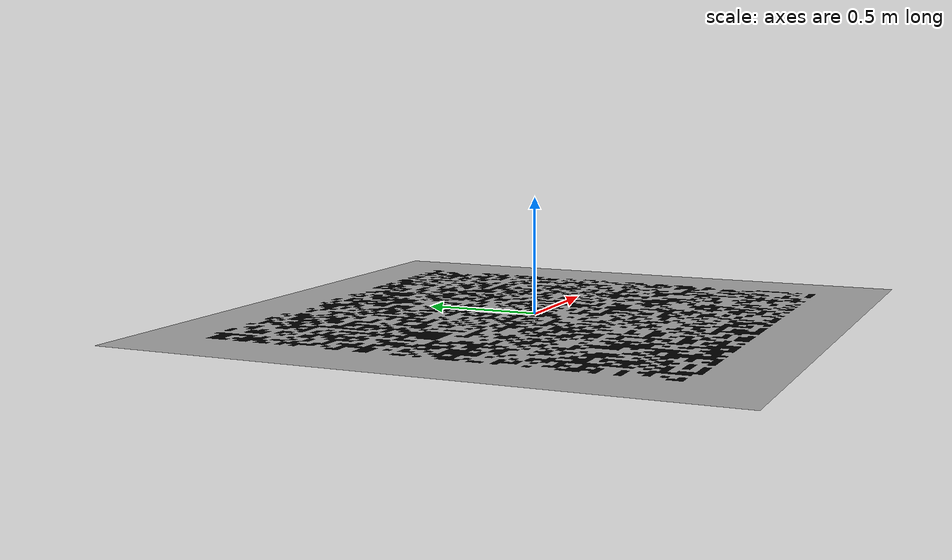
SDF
<?xml version="1.0" ?>
<sdf version="1.6">
    <model name="qr_code_1">
        <static>true</static> <!-- Set to true if the model is static, as for a QR code -->
        <link name="qr_code_link">
            <visual name="qr_code_visual">
                <geometry>
                    <mesh>
                        <uri>model://qr_code_1/qr_code_1.dae</uri>
                    </mesh>
                </geometry>
            </visual>
            <collision name="qr_code_collision">
                <geometry>
                    <mesh>
                        <uri>model://qr_code_1/qr_code_1.dae</uri>
                    </mesh>
                </geometry>
            </collision>
        </link>
    </model>
</sdf>
